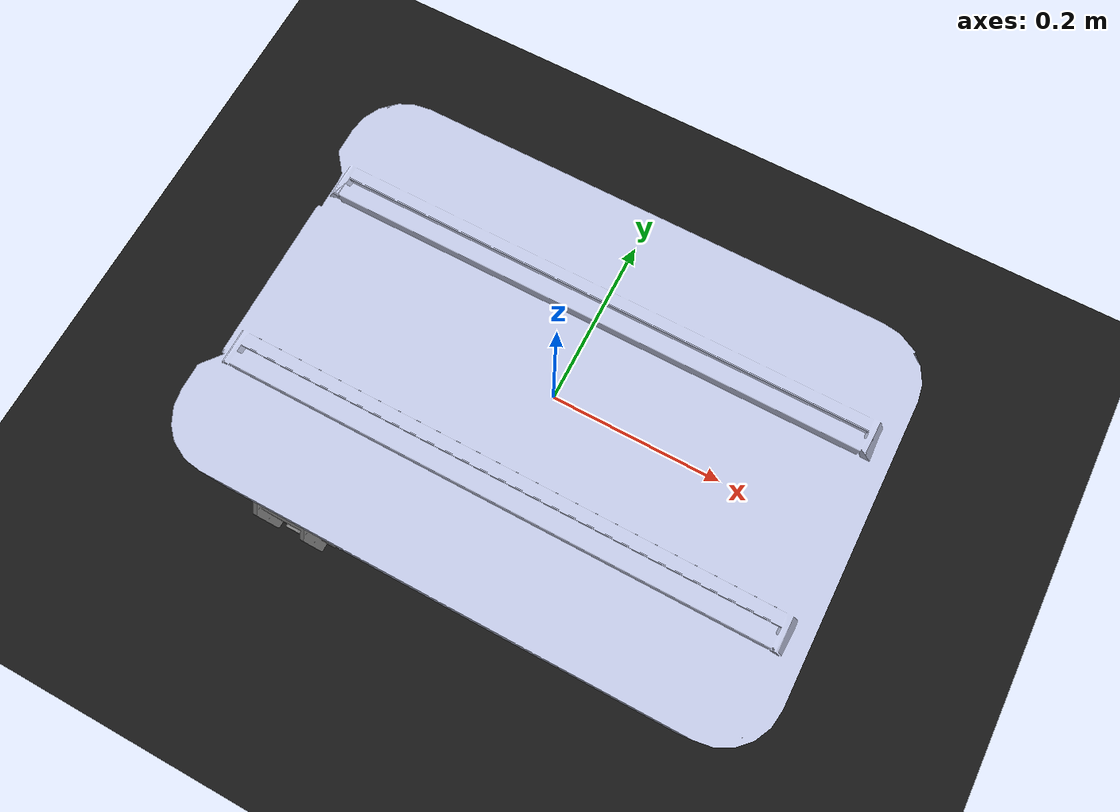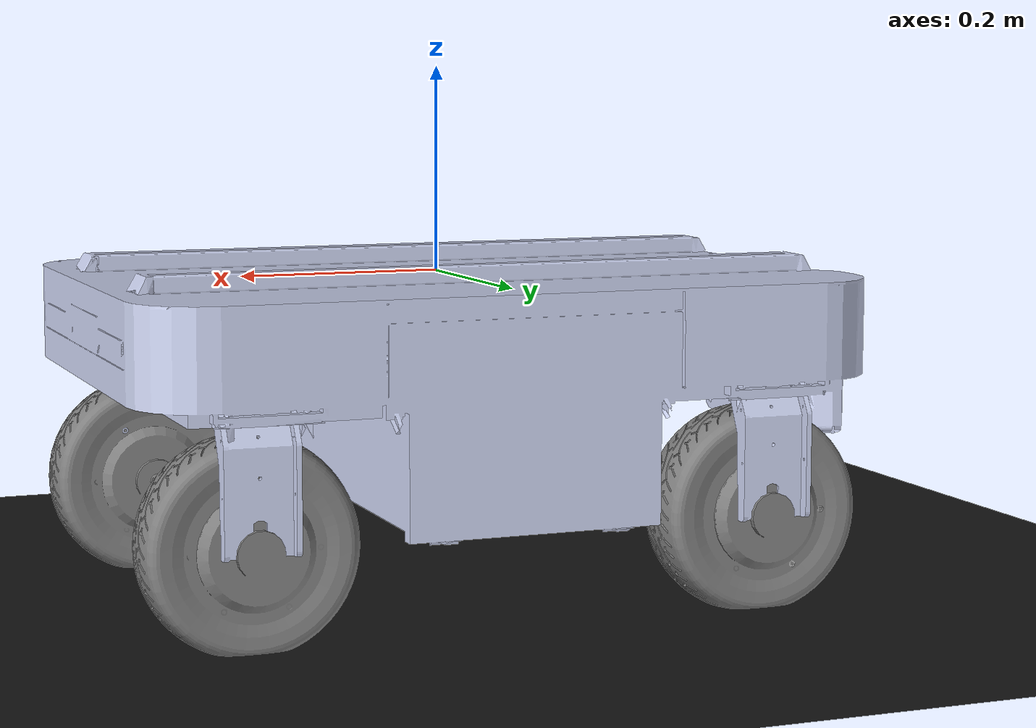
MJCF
<mujoco model="ranger_mini_v3">
    <compiler angle="radian" meshdir="/home/khalillee/sim1_ws/src/ugv_gazebo_sim/ranger_mini/ranger_mini_v3/meshes/" />
    <size njmax="500" nconmax="100" />

    <!-- 全局物理参数 -->
    <option timestep="0.002"/>
    <option cone="elliptic"/>
    <option impratio="0.5"/>
    <option integrator="RK4"/>  <!-- 更稳定的积分器 -->
    <!-- Add air resistance -->
    <option wind="0 0 0" density="1.2" viscosity="1.8e-5"/>
    <!-- Enable gravity compensation -->
    <option gravity="0 0 -9.81"/>

    <asset>
        <mesh name="ranger_base" file="ranger_base.stl" scale="1 1 1" />
        <mesh name="steering_wheel" file="steering_wheel.stl" scale="10 10 10" />
        <mesh name="wheel_v3" file="wheel_v3.stl" scale="10 10 10" />
    </asset>
    <worldbody>
        <!-- 地面 (添加摩擦参数) -->
        <geom name="ground" type="plane" size="10 10 0.1" rgba="0.1 0.1 0.1 1" pos="0 0 -0.31"
        solimp="0.9 0.99 0.001" solref="0.01 1" friction="0.7 0.6 0.7" solmix="0.95"/>

        <body name="base_link" pos="0 0 0">
            <freejoint name="base_free_joint"/>
            <geom type="mesh" contype="0" conaffinity="0" group="1" mass="3" rgba="0.792157 0.819608 0.933333 1" mesh="ranger_base" friction="0.8 0.3 1"/>
            <body name="fr_steering_wheel_link" pos="0.25 -0.19 -0.1">
                <inertial pos="1.8493e-05 1.2713e-06 0.043679" quat="-0.070656 0.703532 0.070657 0.703603" mass="1" diaginertia="0.010465 0.00636302 0.00636248" />
                <joint name="fr_steering_joint" type="hinge" pos="0 0 0" axis="0 0 -1" limited="true" range="-2.1 2.1" damping="0.5"/>
                <geom type="mesh" contype="1" conaffinity="1" group="1" rgba="0.79216 0.81961 0.93333 1" mesh="steering_wheel" mass="0.2" friction="0.03 0.7 1" solimp="0.9 0.95 0.001" solref="0.01 1"/>
                <body name="fr_wheel_link" pos="0 0 -0.12">
                    <inertial pos="0 0 0" quat="0.5 0.5 -0.5 0.5" mass="8" diaginertia="0.0324 0.02047 0.02047" />
                    <joint name="fr_wheel" type="hinge" pos="0 0 0" axis="0 1 0" />
                    <geom quat="0.000796327 1 0 0" type="mesh" contype="1" conaffinity="1" group="1" mesh="wheel_v3" friction="0.03 0.7 1" solimp="0.9 0.95 0.001" solref="0.01 1" mass="1"/>
                </body>
            </body>
            <body name="fl_steering_wheel_link" pos="0.25 0.19 -0.1">
                <inertial pos="-0.0017956 -9.6304e-08 0.043642" quat="-0.0165928 0.692206 0.0172886 0.721302" mass="1" diaginertia="0.0104649 0.006363 0.00636255" />
                <joint name="fl_steering_joint" type="hinge" pos="0 0 0" axis="0 0 -1" limited="true" range="-2.1 2.1" damping="0.5"/>
                <geom quat="0.000796327 0 0 1" type="mesh" contype="1" conaffinity="1" group="1" rgba="0.79216 0.81961 0.93333 1" mesh="steering_wheel" mass="0.2" friction="0.03 0.7 1" solimp="0.9 0.95 0.001" solref="0.01 1"/>
                <body name="fl_wheel_link" pos="0 0 -0.12">
                    <inertial pos="0 0 0" quat="0.5 0.5 -0.5 0.5" mass="8" diaginertia="0.0324 0.02047 0.02047" />
                    <joint name="fl_wheel" type="hinge" pos="0 0 0" axis="0 1 0" />
                    <geom type="mesh" contype="1" conaffinity="1" group="1" mesh="wheel_v3" friction="0.03 0.7 1" solimp="0.9 0.95 0.001" solref="0.01 1" mass="1"/>
                </body>
            </body>
            <body name="rl_steering_wheel_link" pos="-0.25 0.19 -0.1">
                <inertial pos="-0.00017093 6.1255e-08 0.043678" quat="-0.020441 0.705442 0.0205219 0.708176" mass="1" diaginertia="0.0104651 0.006363 0.00636264" />
                <joint name="rl_steering_joint" type="hinge" pos="0 0 0" axis="0 0 -1" limited="true" range="-2.1 2.1" damping="0.5"/>
                <geom quat="0.000796327 0 0 1" type="mesh" contype="1" conaffinity="1" group="1" rgba="0.79216 0.81961 0.93333 1" mesh="steering_wheel" mass="0.2" friction="0.03 0.7 1" solimp="0.9 0.95 0.001" solref="0.01 1"/>
                <body name="rl_wheel_link" pos="0 0 -0.12">
                    <inertial pos="0 0 0" quat="0.5 0.5 -0.5 0.5" mass="8" diaginertia="0.0324 0.02047 0.02047" />
                    <joint name="rl_wheel" type="hinge" pos="0 0 0" axis="0 1 0" />
                    <geom type="mesh" contype="1" conaffinity="1" group="1" mesh="wheel_v3" friction="0.03 0.7 1" solimp="0.9 0.95 0.001" solref="0.01 1" mass="1"/>
                </body>
            </body>
            <body name="rr_steering_wheel_link" pos="-0.23 -0.206 -0.1">
                <inertial pos="0 0 0" mass="1" diaginertia="0.01 0.01 0.01" />
                <joint name="rr_steering_joint" type="hinge" pos="0 0 0" axis="0 0 -1" limited="true" range="-2.1 2.1" damping="0.5"/>
                <geom type="mesh" contype="1" conaffinity="1" group="1" mesh="steering_wheel" mass="0.2" friction="0.03 0.7 1" solimp="0.9 0.95 0.001" solref="0.01 1"/>
                <body name="rr_wheel_link" pos="0 0 -0.12">
                    <inertial pos="0 0 0" quat="0.5 0.5 -0.5 0.5" mass="8" diaginertia="0.0324 0.02047 0.02047" />
                    <joint name="rr_wheel" type="hinge" pos="0 0 0" axis="0 1 0" />
                    <geom quat="0.000796327 1 0 0" type="mesh" contype="1" conaffinity="1" group="1" mesh="wheel_v3" friction="0.03 0.7 1" solimp="0.9 0.95 0.001" solref="0.01 1" mass="1"/>
                </body>
            </body>
        </body>
    </worldbody>
    <actuator>
        <!-- 轮驱动 -->
        <motor name="fl_wheel_motor" joint="fl_wheel" gear="1" forcelimited="true" forcerange="-5 5"/>
        <motor name="fr_wheel_motor" joint="fr_wheel" gear="1" forcelimited="true" forcerange="-5 5"/>
        <motor name="rl_wheel_motor" joint="rl_wheel" gear="1" forcelimited="true" forcerange="-5 5"/>
        <motor name="rr_wheel_motor" joint="rr_wheel" gear="1" forcelimited="true" forcerange="-5 5"/>
        <!-- 转向驱动 -->
        <general name="fl_steering" joint="fl_steering_joint"
                 gaintype="fixed" gainprm="10" biastype="none"/>
        <general name="fr_steering" joint="fr_steering_joint"
                 gaintype="fixed" gainprm="10" biastype="none"/>
        <general name="rl_steering" joint="rl_steering_joint"
                 gaintype="fixed" gainprm="10" biastype="none"/>
        <general name="rr_steering" joint="rr_steering_joint"
                 gaintype="fixed" gainprm="10" biastype="none"/>
    </actuator>
    <sensor>
        <!-- 转向关节位置反馈 -->
        <jointpos name="fl_steering_pos" joint="fl_steering_joint"/>
        <jointpos name="fr_steering_pos" joint="fr_steering_joint"/>
        <jointpos name="rl_steering_pos" joint="rl_steering_joint"/>
        <jointpos name="rr_steering_pos" joint="rr_steering_joint"/>

        <!-- 转向关节速度反馈 -->
        <jointvel name="fl_steering_vel" joint="fl_steering_joint"/>
        <jointvel name="fr_steering_vel" joint="fr_steering_joint"/>
        <jointvel name="rl_steering_vel" joint="rl_steering_joint"/>
        <jointvel name="rr_steering_vel" joint="rr_steering_joint"/>

        <!-- 轮速反馈 -->
        <jointvel name="fl_wheel_vel" joint="fl_wheel"/>
        <jointvel name="fr_wheel_vel" joint="fr_wheel"/>
        <jointvel name="rl_wheel_vel" joint="rl_wheel"/>
        <jointvel name="rr_wheel_vel" joint="rr_wheel"/>
    </sensor>

</mujoco>
